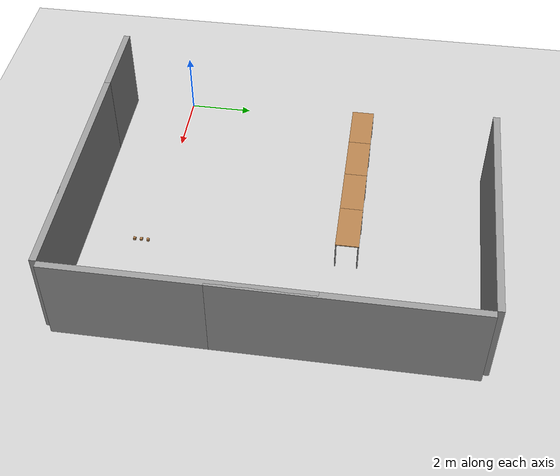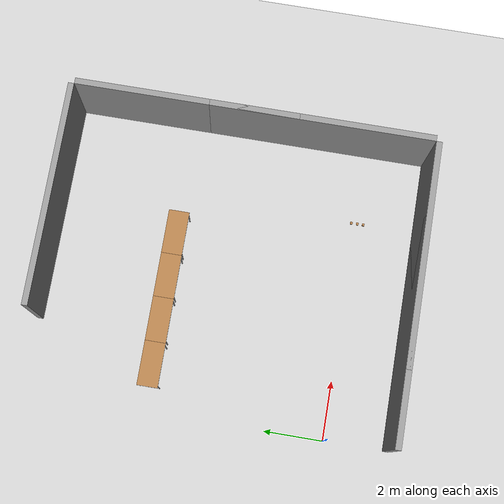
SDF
<sdf version="1.6">
 <world name="default">
  <model name="ground_plane">
   <static>1</static>
   <link name="link">
    <collision name="collision">
     <geometry><plane><normal>0 0 1</normal><size>100 100</size></plane></geometry>
     <surface>
      <contact><collide_bitmask>65535</collide_bitmask></contact>
      <friction><ode><mu>100</mu><mu2>50</mu2></ode></friction>
     </surface>
    </collision>
    <visual name="visual">
     <cast_shadows>0</cast_shadows>
     <geometry><plane><normal>0 0 1</normal><size>100 100</size></plane></geometry>
     <material>
      <script><uri>file://media/materials/scripts/gazebo.material</uri><name>Gazebo/Grey</name></script>
     </material>
    </visual>
   </link>
  </model>
  <model name="wood_cube_7_5cm">
   <link name="link">
    <pose>0 0 0.0375 0 -0 0</pose>
    <inertial>
     <mass>0.2249</mass>
     <inertia>
      <ixx>0.000210844</ixx>
      <ixy>0</ixy>
      <ixz>0</ixz>
      <iyy>0.000210844</iyy>
      <iyz>0</iyz>
      <izz>0.000210844</izz>
     </inertia>
    </inertial>
    <collision name="collision">
     <geometry><box><size>0.075 0.075 0.075</size></box></geometry>
     <surface>
      <contact>
       <poissons_ratio>0.347</poissons_ratio>
       <elastic_modulus>8.8e+09</elastic_modulus>
       <ode><kp>100000</kp><kd>100</kd><max_vel>100</max_vel><min_depth>0.001</min_depth></ode>
      </contact>
      <friction>
       <torsional>
        <coefficient>1</coefficient>
        <use_patch_radius>0</use_patch_radius>
        <surface_radius>0.01</surface_radius>
       </torsional>
      </friction>
     </surface>
    </collision>
    <visual name="visual">
     <geometry><box><size>0.075 0.075 0.075</size></box></geometry>
     <material>
      <script><uri>file://media/materials/scripts/gazebo.material</uri><name>Gazebo/Wood</name></script>
     </material>
    </visual>
   </link>
   <pose>7.3 0.2 0.963759 -1.2e-05 -2.3e-05 0.000142</pose>
  </model>
  <model name="grey_wall_0">
   <static>1</static>
   <link name="link">
    <pose>0 0 1.4 0 -0 0</pose>
    <collision name="collision"><geometry><box><size>7.5 0.2 2.8</size></box></geometry></collision>
    <visual name="visual">
     <cast_shadows>0</cast_shadows>
     <geometry><box><size>7.5 0.2 2.8</size></box></geometry>
     <material>
      <script>
       <uri>model://grey_wall/materials/scripts</uri>
       <uri>model://grey_wall/materials/textures</uri>
       <name>vrc/grey_wall</name>
      </script>
     </material>
    </visual>
   </link>
   <pose>3.75 -2.1 0 0 -0 0</pose>
  </model>
  <model name="grey_wall_2">
   <static>1</static>
   <link name="link">
    <pose>0 0 1.4 0 -0 0</pose>
    <collision name="collision"><geometry><box><size>7.5 0.2 2.8</size></box></geometry></collision>
    <visual name="visual">
     <cast_shadows>0</cast_shadows>
     <geometry><box><size>7.5 0.2 2.8</size></box></geometry>
     <material>
      <script>
       <uri>model://grey_wall/materials/scripts</uri>
       <uri>model://grey_wall/materials/textures</uri>
       <name>vrc/grey_wall</name>
      </script>
     </material>
    </visual>
   </link>
   <pose>6.25 -2.1 0 0 -0 0</pose>
  </model>
  <model name="grey_wall_3_clone_clone">
   <static>1</static>
   <link name="link">
    <pose>0 0 1.4 0 -0 0</pose>
    <collision name="collision"><geometry><box><size>7.5 0.2 2.8</size></box></geometry></collision>
    <visual name="visual">
     <cast_shadows>0</cast_shadows>
     <geometry><box><size>7.5 0.2 2.8</size></box></geometry>
     <material>
      <script>
       <uri>model://grey_wall/materials/scripts</uri>
       <uri>model://grey_wall/materials/textures</uri>
       <name>vrc/grey_wall</name>
      </script>
     </material>
    </visual>
   </link>
   <pose>10.1 6.25 0 0 -0 1.5708</pose>
  </model>
  <model name="grey_wall_3_clone_clone_0">
   <static>1</static>
   <link name="link">
    <pose>0 0 1.4 0 -0 0</pose>
    <collision name="collision"><geometry><box><size>7.5 0.2 2.8</size></box></geometry></collision>
    <visual name="visual">
     <cast_shadows>0</cast_shadows>
     <geometry><box><size>7.5 0.2 2.8</size></box></geometry>
     <material>
      <script>
       <uri>model://grey_wall/materials/scripts</uri>
       <uri>model://grey_wall/materials/textures</uri>
       <name>vrc/grey_wall</name>
      </script>
     </material>
    </visual>
   </link>
   <pose>10.1 1.75 0 0 -0 1.5708</pose>
  </model>
  <model name="grey_wall_clone_0">
   <static>1</static>
   <link name="link">
    <pose>0 0 1.4 0 -0 0</pose>
    <collision name="collision"><geometry><box><size>7.5 0.2 2.8</size></box></geometry></collision>
    <visual name="visual">
     <cast_shadows>0</cast_shadows>
     <geometry><box><size>7.5 0.2 2.8</size></box></geometry>
     <material>
      <script>
       <uri>model://grey_wall/materials/scripts</uri>
       <uri>model://grey_wall/materials/textures</uri>
       <name>vrc/grey_wall</name>
      </script>
     </material>
    </visual>
   </link>
   <pose>6.25 10.1 0 0 -0 0</pose>
  </model>
  <model name="wood_cube_7_5cm_0">
   <link name="link">
    <pose>0 0 0.0375 0 -0 0</pose>
    <inertial>
     <mass>0.2249</mass>
     <inertia>
      <ixx>0.000210844</ixx>
      <ixy>0</ixy>
      <ixz>0</ixz>
      <iyy>0.000210844</iyy>
      <iyz>0</iyz>
      <izz>0.000210844</izz>
     </inertia>
    </inertial>
    <collision name="collision">
     <geometry><box><size>0.075 0.075 0.075</size></box></geometry>
     <surface>
      <contact>
       <poissons_ratio>0.347</poissons_ratio>
       <elastic_modulus>8.8e+09</elastic_modulus>
       <ode><kp>100000</kp><kd>100</kd><max_vel>100</max_vel><min_depth>0.001</min_depth></ode>
      </contact>
      <friction>
       <torsional>
        <coefficient>1</coefficient>
        <use_patch_radius>0</use_patch_radius>
        <surface_radius>0.01</surface_radius>
       </torsional>
      </friction>
     </surface>
    </collision>
    <visual name="visual">
     <geometry><box><size>0.075 0.075 0.075</size></box></geometry>
     <material>
      <script><uri>file://media/materials/scripts/gazebo.material</uri><name>Gazebo/Wood</name></script>
     </material>
    </visual>
   </link>
   <pose>7.3 -6.3e-05 0.963759 -1e-06 -0 0.0005</pose>
  </model>
  <model name="wood_cube_7_5cm_1">
   <link name="link">
    <pose>0 0 0.0375 0 -0 0</pose>
    <inertial>
     <mass>0.2249</mass>
     <inertia>
      <ixx>0.000210844</ixx>
      <ixy>0</ixy>
      <ixz>0</ixz>
      <iyy>0.000210844</iyy>
      <iyz>0</iyz>
      <izz>0.000210844</izz>
     </inertia>
    </inertial>
    <collision name="collision">
     <geometry><box><size>0.075 0.075 0.075</size></box></geometry>
     <surface>
      <contact>
       <poissons_ratio>0.347</poissons_ratio>
       <elastic_modulus>8.8e+09</elastic_modulus>
       <ode><kp>100000</kp><kd>100</kd><max_vel>100</max_vel><min_depth>0.001</min_depth></ode>
      </contact>
      <friction>
       <torsional>
        <coefficient>1</coefficient>
        <use_patch_radius>0</use_patch_radius>
        <surface_radius>0.01</surface_radius>
       </torsional>
      </friction>
     </surface>
    </collision>
    <visual name="visual">
     <geometry><box><size>0.075 0.075 0.075</size></box></geometry>
     <material>
      <script><uri>file://media/materials/scripts/gazebo.material</uri><name>Gazebo/Wood</name></script>
     </material>
    </visual>
   </link>
   <pose>7.3 -0.200001 0.963756 0 -0 0</pose>
  </model>
  <model name="table_17_clone_3">
   <static>1</static>
   <link name="link">
    <collision name="surface">
     <pose>0 0 1 0 -0 0</pose>
     <geometry><box><size>1.5 0.7 0.03</size></box></geometry>
     <surface><friction><ode><mu>0.6</mu><mu2>0.6</mu2></ode></friction></surface>
    </collision>
    <visual name="visual1">
     <pose>0 0 1 0 -0 0</pose>
     <geometry><box><size>1.5 0.7 0.03</size></box></geometry>
     <material>
      <script><uri>file://media/materials/scripts/gazebo.material</uri><name>Gazebo/Wood</name></script>
     </material>
    </visual>
    <collision name="front_left_leg">
     <pose>0.68 0.33 0.5 0 -0 0</pose>
     <geometry><cylinder><radius>0.02</radius><length>1</length></cylinder></geometry>
    </collision>
    <visual name="front_left_leg">
     <pose>0.68 0.33 0.5 0 -0 0</pose>
     <geometry><cylinder><radius>0.02</radius><length>1</length></cylinder></geometry>
     <material>
      <script><uri>file://media/materials/scripts/gazebo.material</uri><name>Gazebo/Grey</name></script>
     </material>
    </visual>
    <collision name="front_right_leg">
     <pose>0.68 -0.33 0.5 0 -0 0</pose>
     <geometry><cylinder><radius>0.02</radius><length>1</length></cylinder></geometry>
    </collision>
    <visual name="front_right_leg">
     <pose>0.68 -0.33 0.5 0 -0 0</pose>
     <geometry><cylinder><radius>0.02</radius><length>1</length></cylinder></geometry>
     <material>
      <script><uri>file://media/materials/scripts/gazebo.material</uri><name>Gazebo/Grey</name></script>
     </material>
    </visual>
    <collision name="back_right_leg">
     <pose>-0.68 -0.33 0.5 0 -0 0</pose>
     <geometry><cylinder><radius>0.02</radius><length>1</length></cylinder></geometry>
    </collision>
    <visual name="back_right_leg">
     <pose>-0.68 -0.33 0.5 0 -0 0</pose>
     <geometry><cylinder><radius>0.02</radius><length>1</length></cylinder></geometry>
     <material>
      <script><uri>file://media/materials/scripts/gazebo.material</uri><name>Gazebo/Grey</name></script>
     </material>
    </visual>
    <collision name="back_left_leg">
     <pose>-0.68 0.33 0.5 0 -0 0</pose>
     <geometry><cylinder><radius>0.02</radius><length>1</length></cylinder></geometry>
    </collision>
    <visual name="back_left_leg">
     <pose>-0.68 0.33 0.5 0 -0 0</pose>
     <geometry><cylinder><radius>0.02</radius><length>1</length></cylinder></geometry>
     <material>
      <script><uri>file://media/materials/scripts/gazebo.material</uri><name>Gazebo/Grey</name></script>
     </material>
    </visual>
   </link>
   <pose>1.5 6 0 0 -0 0</pose>
  </model>
  <model name="table_17_clone_4">
   <static>1</static>
   <link name="link">
    <collision name="surface">
     <pose>0 0 1 0 -0 0</pose>
     <geometry><box><size>1.5 0.7 0.03</size></box></geometry>
     <surface><friction><ode><mu>0.6</mu><mu2>0.6</mu2></ode></friction></surface>
    </collision>
    <visual name="visual1">
     <pose>0 0 1 0 -0 0</pose>
     <geometry><box><size>1.5 0.7 0.03</size></box></geometry>
     <material>
      <script><uri>file://media/materials/scripts/gazebo.material</uri><name>Gazebo/Wood</name></script>
     </material>
    </visual>
    <collision name="front_left_leg">
     <pose>0.68 0.33 0.5 0 -0 0</pose>
     <geometry><cylinder><radius>0.02</radius><length>1</length></cylinder></geometry>
    </collision>
    <visual name="front_left_leg">
     <pose>0.68 0.33 0.5 0 -0 0</pose>
     <geometry><cylinder><radius>0.02</radius><length>1</length></cylinder></geometry>
     <material>
      <script><uri>file://media/materials/scripts/gazebo.material</uri><name>Gazebo/Grey</name></script>
     </material>
    </visual>
    <collision name="front_right_leg">
     <pose>0.68 -0.33 0.5 0 -0 0</pose>
     <geometry><cylinder><radius>0.02</radius><length>1</length></cylinder></geometry>
    </collision>
    <visual name="front_right_leg">
     <pose>0.68 -0.33 0.5 0 -0 0</pose>
     <geometry><cylinder><radius>0.02</radius><length>1</length></cylinder></geometry>
     <material>
      <script><uri>file://media/materials/scripts/gazebo.material</uri><name>Gazebo/Grey</name></script>
     </material>
    </visual>
    <collision name="back_right_leg">
     <pose>-0.68 -0.33 0.5 0 -0 0</pose>
     <geometry><cylinder><radius>0.02</radius><length>1</length></cylinder></geometry>
    </collision>
    <visual name="back_right_leg">
     <pose>-0.68 -0.33 0.5 0 -0 0</pose>
     <geometry><cylinder><radius>0.02</radius><length>1</length></cylinder></geometry>
     <material>
      <script><uri>file://media/materials/scripts/gazebo.material</uri><name>Gazebo/Grey</name></script>
     </material>
    </visual>
    <collision name="back_left_leg">
     <pose>-0.68 0.33 0.5 0 -0 0</pose>
     <geometry><cylinder><radius>0.02</radius><length>1</length></cylinder></geometry>
    </collision>
    <visual name="back_left_leg">
     <pose>-0.68 0.33 0.5 0 -0 0</pose>
     <geometry><cylinder><radius>0.02</radius><length>1</length></cylinder></geometry>
     <material>
      <script><uri>file://media/materials/scripts/gazebo.material</uri><name>Gazebo/Grey</name></script>
     </material>
    </visual>
   </link>
   <pose>3 6 0 0 -0 0</pose>
  </model>
  <model name="table_17_clone_5">
   <static>1</static>
   <link name="link">
    <collision name="surface">
     <pose>0 0 1 0 -0 0</pose>
     <geometry><box><size>1.5 0.7 0.03</size></box></geometry>
     <surface><friction><ode><mu>0.6</mu><mu2>0.6</mu2></ode></friction></surface>
    </collision>
    <visual name="visual1">
     <pose>0 0 1 0 -0 0</pose>
     <geometry><box><size>1.5 0.7 0.03</size></box></geometry>
     <material>
      <script><uri>file://media/materials/scripts/gazebo.material</uri><name>Gazebo/Wood</name></script>
     </material>
    </visual>
    <collision name="front_left_leg">
     <pose>0.68 0.33 0.5 0 -0 0</pose>
     <geometry><cylinder><radius>0.02</radius><length>1</length></cylinder></geometry>
    </collision>
    <visual name="front_left_leg">
     <pose>0.68 0.33 0.5 0 -0 0</pose>
     <geometry><cylinder><radius>0.02</radius><length>1</length></cylinder></geometry>
     <material>
      <script><uri>file://media/materials/scripts/gazebo.material</uri><name>Gazebo/Grey</name></script>
     </material>
    </visual>
    <collision name="front_right_leg">
     <pose>0.68 -0.33 0.5 0 -0 0</pose>
     <geometry><cylinder><radius>0.02</radius><length>1</length></cylinder></geometry>
    </collision>
    <visual name="front_right_leg">
     <pose>0.68 -0.33 0.5 0 -0 0</pose>
     <geometry><cylinder><radius>0.02</radius><length>1</length></cylinder></geometry>
     <material>
      <script><uri>file://media/materials/scripts/gazebo.material</uri><name>Gazebo/Grey</name></script>
     </material>
    </visual>
    <collision name="back_right_leg">
     <pose>-0.68 -0.33 0.5 0 -0 0</pose>
     <geometry><cylinder><radius>0.02</radius><length>1</length></cylinder></geometry>
    </collision>
    <visual name="back_right_leg">
     <pose>-0.68 -0.33 0.5 0 -0 0</pose>
     <geometry><cylinder><radius>0.02</radius><length>1</length></cylinder></geometry>
     <material>
      <script><uri>file://media/materials/scripts/gazebo.material</uri><name>Gazebo/Grey</name></script>
     </material>
    </visual>
    <collision name="back_left_leg">
     <pose>-0.68 0.33 0.5 0 -0 0</pose>
     <geometry><cylinder><radius>0.02</radius><length>1</length></cylinder></geometry>
    </collision>
    <visual name="back_left_leg">
     <pose>-0.68 0.33 0.5 0 -0 0</pose>
     <geometry><cylinder><radius>0.02</radius><length>1</length></cylinder></geometry>
     <material>
      <script><uri>file://media/materials/scripts/gazebo.material</uri><name>Gazebo/Grey</name></script>
     </material>
    </visual>
   </link>
   <pose>4.5 6 0 0 -0 0</pose>
  </model>
  <model name="table_17_clone_6">
   <static>1</static>
   <link name="link">
    <collision name="surface">
     <pose>0 0 1 0 -0 0</pose>
     <geometry><box><size>1.5 0.7 0.03</size></box></geometry>
     <surface><friction><ode><mu>0.6</mu><mu2>0.6</mu2></ode></friction></surface>
    </collision>
    <visual name="visual1">
     <pose>0 0 1 0 -0 0</pose>
     <geometry><box><size>1.5 0.7 0.03</size></box></geometry>
     <material>
      <script><uri>file://media/materials/scripts/gazebo.material</uri><name>Gazebo/Wood</name></script>
     </material>
    </visual>
    <collision name="front_left_leg">
     <pose>0.68 0.33 0.5 0 -0 0</pose>
     <geometry><cylinder><radius>0.02</radius><length>1</length></cylinder></geometry>
    </collision>
    <visual name="front_left_leg">
     <pose>0.68 0.33 0.5 0 -0 0</pose>
     <geometry><cylinder><radius>0.02</radius><length>1</length></cylinder></geometry>
     <material>
      <script><uri>file://media/materials/scripts/gazebo.material</uri><name>Gazebo/Grey</name></script>
     </material>
    </visual>
    <collision name="front_right_leg">
     <pose>0.68 -0.33 0.5 0 -0 0</pose>
     <geometry><cylinder><radius>0.02</radius><length>1</length></cylinder></geometry>
    </collision>
    <visual name="front_right_leg">
     <pose>0.68 -0.33 0.5 0 -0 0</pose>
     <geometry><cylinder><radius>0.02</radius><length>1</length></cylinder></geometry>
     <material>
      <script><uri>file://media/materials/scripts/gazebo.material</uri><name>Gazebo/Grey</name></script>
     </material>
    </visual>
    <collision name="back_right_leg">
     <pose>-0.68 -0.33 0.5 0 -0 0</pose>
     <geometry><cylinder><radius>0.02</radius><length>1</length></cylinder></geometry>
    </collision>
    <visual name="back_right_leg">
     <pose>-0.68 -0.33 0.5 0 -0 0</pose>
     <geometry><cylinder><radius>0.02</radius><length>1</length></cylinder></geometry>
     <material>
      <script><uri>file://media/materials/scripts/gazebo.material</uri><name>Gazebo/Grey</name></script>
     </material>
    </visual>
    <collision name="back_left_leg">
     <pose>-0.68 0.33 0.5 0 -0 0</pose>
     <geometry><cylinder><radius>0.02</radius><length>1</length></cylinder></geometry>
    </collision>
    <visual name="back_left_leg">
     <pose>-0.68 0.33 0.5 0 -0 0</pose>
     <geometry><cylinder><radius>0.02</radius><length>1</length></cylinder></geometry>
     <material>
      <script><uri>file://media/materials/scripts/gazebo.material</uri><name>Gazebo/Grey</name></script>
     </material>
    </visual>
   </link>
   <pose>6 6 0 0 -0 0</pose>
  </model>
 </world>
</sdf>
